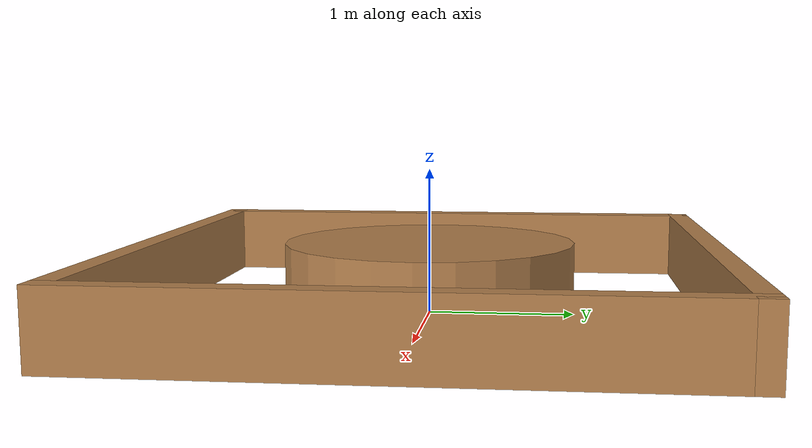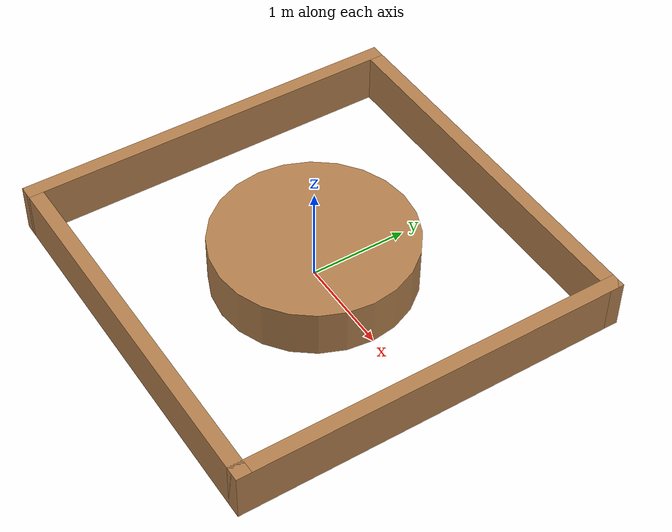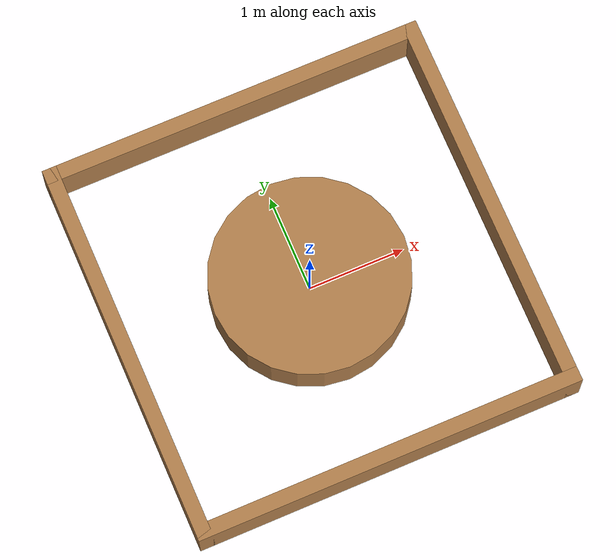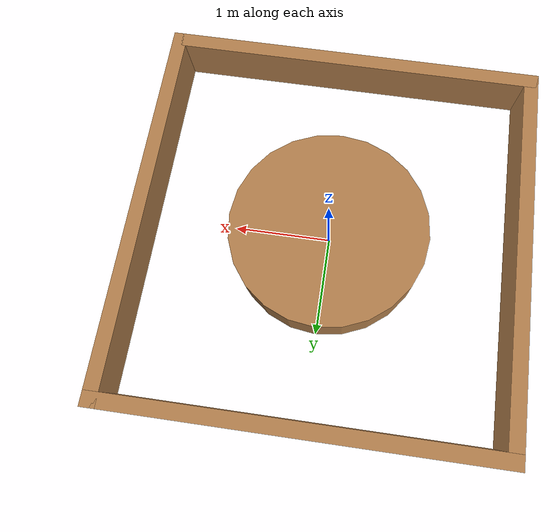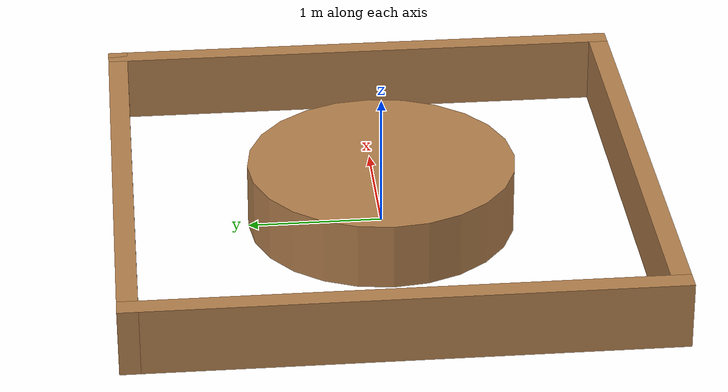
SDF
<?xml version='1.0'?>
<sdf version='1.6'>
  <model name='round_obstacle'>
    <pose frame=''>0 0 0 0 -0 0</pose>
    <link name='Wall_0'>
      <collision name='Wall_0_Collision'>
        <geometry>
          <box>
            <size>4 0.15 0.5</size>
          </box>
        </geometry>
        <pose frame=''>0 0 0.25 0 -0 0</pose>
      </collision>
      <visual name='Wall_0_Visual'>
        <pose frame=''>0 0 0.25 0 -0 0</pose>
        <geometry>
          <box>
            <size>4 0.15 0.5</size>
          </box>
        </geometry>
        <material>
          <script>
            <uri>file://media/materials/scripts/gazebo.material</uri>
            <name>Gazebo/Wood</name>
          </script>
          <ambient>1 1 1 1</ambient>
        </material>
      </visual>
      <pose frame=''>0 1.925 0 0 -0 0</pose>
    </link>
    <link name='Wall_2'>
      <collision name='Wall_2_Collision'>
        <geometry>
          <box>
            <size>4 0.15 0.5</size>
          </box>
        </geometry>
        <pose frame=''>0 0 0.25 0 -0 0</pose>
      </collision>
      <visual name='Wall_2_Visual'>
        <pose frame=''>0 0 0.25 0 -0 0</pose>
        <geometry>
          <box>
            <size>4 0.15 0.5</size>
          </box>
        </geometry>
        <material>
          <script>
            <uri>file://media/materials/scripts/gazebo.material</uri>
            <name>Gazebo/Wood</name>
          </script>
          <ambient>1 1 1 1</ambient>
        </material>
      </visual>
      <pose frame=''>-1.925 0 0 0 0 -1.5708</pose>
    </link>
    <link name='Wall_3'>
      <collision name='Wall_3_Collision'>
        <geometry>
          <box>
            <size>4 0.15 0.5</size>
          </box>
        </geometry>
        <pose frame=''>0 0 0.25 0 -0 0</pose>
      </collision>
      <visual name='Wall_3_Visual'>
        <pose frame=''>0 0 0.25 0 -0 0</pose>
        <geometry>
          <box>
            <size>4 0.15 0.5</size>
          </box>
        </geometry>
        <material>
          <script>
            <uri>file://media/materials/scripts/gazebo.material</uri>
            <name>Gazebo/Wood</name>
          </script>
          <ambient>1 1 1 1</ambient>
        </material>
      </visual>
      <pose frame=''>0 -1.925 0 0 -0 0</pose>
    </link>
    <link name='Wall_4'>
      <collision name='Wall_4_Collision'>
        <geometry>
          <box>
            <size>4 0.15 0.5</size>
          </box>
        </geometry>
        <pose frame=''>0 0 0.25 0 -0 0</pose>
      </collision>
      <visual name='Wall_4_Visual'>
        <pose frame=''>0 0 0.25 0 -0 0</pose>
        <geometry>
          <box>
            <size>4 0.15 0.5</size>
          </box>
        </geometry>
        <material>
          <script>
            <uri>file://media/materials/scripts/gazebo.material</uri>
            <name>Gazebo/Wood</name>
          </script>
          <ambient>1 1 1 1</ambient>
        </material>
      </visual>
      <pose frame=''>1.925 0 0 0 -0 1.5708</pose>
    </link>
    <link name='obstacle'>
      <collision name='obstacle_Collision'>
        <geometry>
          <cylinder>
            <radius>1</radius>
            <length>0.5</length>
          </cylinder>
        </geometry>
        <pose frame=''>0 0 0.25 0 -0 0</pose>
      </collision>
      <visual name='obstacle_Visual'>
        <pose frame=''>0 0 0.25 0 -0 0</pose>
        <geometry>
          <cylinder>
            <radius>1</radius>
            <length>0.5</length>
          </cylinder>
        </geometry>
        <material>
          <script>
            <uri>file://media/materials/scripts/gazebo.material</uri>
            <name>Gazebo/Wood</name>
          </script>
          <ambient>1 1 1 1</ambient>
        </material>
      </visual>
      <pose frame=''>0 0 0 0 -0 1.5708</pose>
    </link>
    <static>1</static>
  </model>
</sdf>
